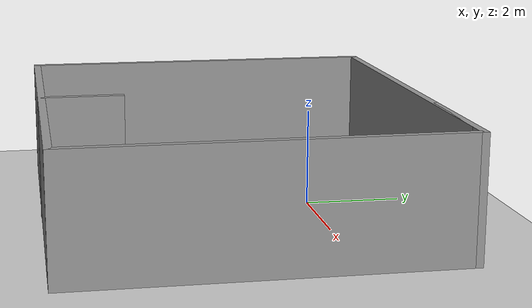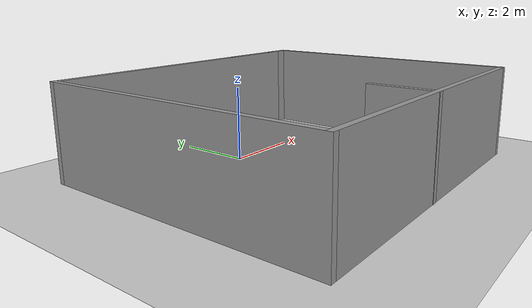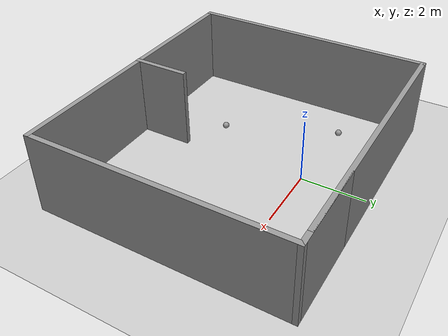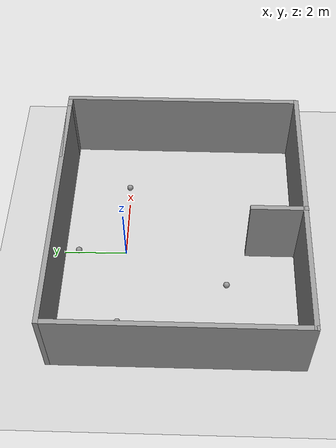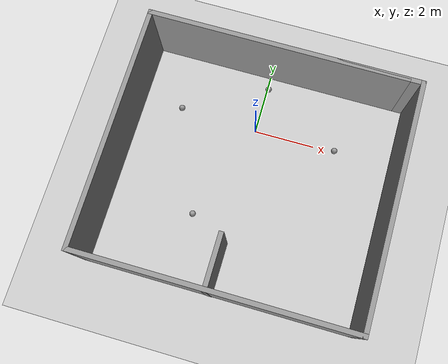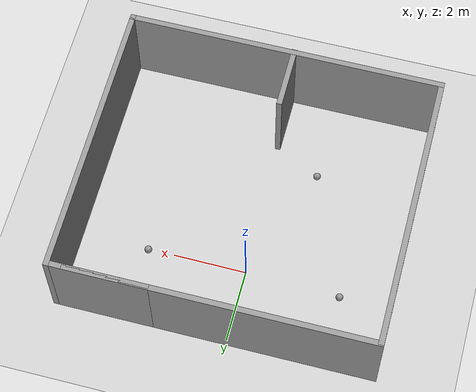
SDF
<sdf version="1.6">
 <world name="default">
  <light name="sun" type="directional">
   <pose>0 0 10 0 -0 0</pose>
   <diffuse>0.8 0.8 0.8 1</diffuse>
   <specular>0.2 0.2 0.2 1</specular>
   <attenuation>
    <range>1000</range>
    <constant>0.9</constant>
    <linear>0.01</linear>
    <quadratic>0.001</quadratic>
   </attenuation>
   <direction>-0.5 0.1 -0.9</direction>
  </light>
  <model name="ground_plane">
   <static>1</static>
   <link name="link">
    <collision name="collision">
     <geometry><plane><normal>0 0 1</normal><size>100 100</size></plane></geometry>
     <surface><friction><ode><mu>100</mu><mu2>50</mu2></ode></friction></surface>
    </collision>
    <visual name="visual">
     <cast_shadows>0</cast_shadows>
     <geometry><plane><normal>0 0 1</normal><size>100 100</size></plane></geometry>
     <material>
      <script><uri>file://media/materials/scripts/gazebo.material</uri><name>Gazebo/Grey</name></script>
     </material>
    </visual>
   </link>
  </model>
  <gravity>0 0 -9.8</gravity>
  <magnetic_field>6e-06 2.3e-05 -4.2e-05</magnetic_field>
  <atmosphere type="adiabatic"/>
  <physics name="default_physics" default="0" type="ode">
   <max_step_size>0.001</max_step_size>
   <real_time_factor>1</real_time_factor>
   <real_time_update_rate>1000</real_time_update_rate>
  </physics>
  <scene><ambient>0.4 0.4 0.4 1</ambient><background>0.7 0.7 0.7 1</background><shadows>1</shadows></scene>
  <spherical_coordinates>
   <surface_model>EARTH_WGS84</surface_model>
   <latitude_deg>0</latitude_deg>
   <longitude_deg>0</longitude_deg>
   <elevation>0</elevation>
   <heading_deg>0</heading_deg>
  </spherical_coordinates>
  <model name="proj2_world">
   <pose>0.335099 -1.74733 0 0 -0 0</pose>
   <link name="Wall_10">
    <collision name="Wall_10_Collision">
     <geometry><box><size>7.75 0.15 2.5</size></box></geometry>
     <pose>0 0 1.25 0 -0 0</pose>
    </collision>
    <visual name="Wall_10_Visual">
     <pose>0 0 1.25 0 -0 0</pose>
     <geometry><box><size>7.75 0.15 2.5</size></box></geometry>
     <material>
      <script><uri>file://media/materials/scripts/gazebo.material</uri><name>Gazebo/Grey</name></script>
      <ambient>1 1 1 1</ambient>
     </material>
     <meta><layer>0</layer></meta>
    </visual>
    <pose>-4.3 0.005179 0 0 0 -1.5708</pose>
   </link>
   <link name="Wall_11">
    <collision name="Wall_11_Collision">
     <geometry><box><size>8.75 0.15 2.5</size></box></geometry>
     <pose>0 0 1.25 0 -0 0</pose>
    </collision>
    <visual name="Wall_11_Visual">
     <pose>0 0 1.25 0 -0 0</pose>
     <geometry><box><size>8.75 0.15 2.5</size></box></geometry>
     <material>
      <script><uri>file://media/materials/scripts/gazebo.material</uri><name>Gazebo/Grey</name></script>
      <ambient>1 1 1 1</ambient>
     </material>
     <meta><layer>0</layer></meta>
    </visual>
    <pose>0 -3.79482 0 0 -0 0</pose>
   </link>
   <link name="Wall_12">
    <collision name="Wall_12_Collision">
     <geometry><box><size>7.75 0.15 2.5</size></box></geometry>
     <pose>0 0 1.25 0 -0 0</pose>
    </collision>
    <visual name="Wall_12_Visual">
     <pose>0 0 1.25 0 -0 0</pose>
     <geometry><box><size>7.75 0.15 2.5</size></box></geometry>
     <material>
      <script><uri>file://media/materials/scripts/gazebo.material</uri><name>Gazebo/Grey</name></script>
      <ambient>1 1 1 1</ambient>
     </material>
     <meta><layer>0</layer></meta>
    </visual>
    <pose>4.3 0.005179 0 0 -0 1.5708</pose>
   </link>
   <link name="Wall_13">
    <collision name="Wall_13_Collision">
     <geometry><box><size>2.75 0.15 2.5</size></box></geometry>
     <pose>0 0 1.25 0 -0 0</pose>
    </collision>
    <visual name="Wall_13_Visual">
     <pose>0 0 1.25 0 -0 0</pose>
     <geometry><box><size>2.75 0.15 2.5</size></box></geometry>
     <material>
      <script><uri>file://media/materials/scripts/gazebo.material</uri><name>Gazebo/Grey</name></script>
      <ambient>1 1 1 1</ambient>
     </material>
     <meta><layer>0</layer></meta>
    </visual>
    <pose>3 3.80518 0 0 -0 3.14159</pose>
   </link>
   <link name="Wall_17">
    <collision name="Wall_17_Collision">
     <geometry><box><size>1.75 0.15 2.5</size></box></geometry>
     <pose>0 0 1.25 0 -0 0</pose>
    </collision>
    <visual name="Wall_17_Visual">
     <pose>0 0 1.25 0 -0 0</pose>
     <geometry><box><size>1.75 0.15 2.5</size></box></geometry>
     <material>
      <script><uri>file://media/materials/scripts/gazebo.material</uri><name>Gazebo/Grey</name></script>
      <ambient>1 1 1 1</ambient>
     </material>
     <meta><layer>0</layer></meta>
    </visual>
    <pose>-0.239404 -3.00518 0 0 -0 1.5708</pose>
   </link>
   <link name="Wall_3">
    <collision name="Wall_3_Collision">
     <geometry><box><size>8.28498 0.15 2.5</size></box></geometry>
     <pose>0 0 1.25 0 -0 0</pose>
    </collision>
    <visual name="Wall_3_Visual">
     <pose>0 0 1.25 0 -0 0</pose>
     <geometry><box><size>8.28498 0.15 2.5</size></box></geometry>
     <material>
      <script><uri>file://media/materials/scripts/gazebo.material</uri><name>Gazebo/Grey</name></script>
      <ambient>1 1 1 1</ambient>
     </material>
     <meta><layer>0</layer></meta>
    </visual>
    <pose>-0.23251 3.80518 0 0 -0 3.14159</pose>
   </link>
   <static>1</static>
  </model>
  <model name="my_ball">
   <link name="link_0">
    <inertial>
     <mass>1</mass>
     <inertia><ixx>0.1</ixx><ixy>0</ixy><ixz>0</ixz><iyy>0.1</iyy><iyz>0</iyz><izz>0.1</izz></inertia>
    </inertial>
    <visual name="visual">
     <geometry><sphere><radius>0.1</radius></sphere></geometry>
     <material>
      <lighting>1</lighting>
      <script><uri>file://media/materials/scripts/gazebo.material</uri><name>Gazebo/Grey</name></script>
      <shader type="pixel"><normal_map>__default__</normal_map></shader>
      <ambient>1 1 1 1</ambient>
      <diffuse>1 1 1 1</diffuse>
      <specular>1 1 1 1</specular>
      <emissive>1 1 1 1</emissive>
     </material>
    </visual>
    <collision name="collision">
     <geometry><sphere><radius>0.1</radius></sphere></geometry>
     <surface>
      <friction>
       <ode><mu>1</mu><mu2>1</mu2><fdir1>0 0 0</fdir1><slip1>0</slip1><slip2>0</slip2></ode>
       <torsional>
        <coefficient>1</coefficient>
        <patch_radius>0</patch_radius>
        <surface_radius>0</surface_radius>
        <use_patch_radius>1</use_patch_radius>
        <ode><slip>0</slip></ode>
       </torsional>
      </friction>
      <bounce><restitution_coefficient>0</restitution_coefficient><threshold>1e+06</threshold></bounce>
      <contact>
       <collide_without_contact>0</collide_without_contact>
       <collide_without_contact_bitmask>1</collide_without_contact_bitmask>
       <collide_bitmask>1</collide_bitmask>
       <ode>
        <soft_cfm>0</soft_cfm>
        <soft_erp>0.2</soft_erp>
        <kp>1e+13</kp>
        <kd>1</kd>
        <max_vel>0.01</max_vel>
        <min_depth>0</min_depth>
       </ode>
       <bullet>
        <split_impulse>1</split_impulse>
        <split_impulse_penetration_threshold>-0.01</split_impulse_penetration_threshold>
        <soft_cfm>0</soft_cfm>
        <soft_erp>0.2</soft_erp>
        <kp>1e+13</kp>
        <kd>1</kd>
       </bullet>
      </contact>
     </surface>
    </collision>
   </link>
   <static>0</static>
   <pose>2.70858 0.042543 0.1 0 -0 0</pose>
  </model>
  <model name="my_ball_0">
   <link name="link_0">
    <inertial>
     <mass>1</mass>
     <inertia><ixx>0.1</ixx><ixy>0</ixy><ixz>0</ixz><iyy>0.1</iyy><iyz>0</iyz><izz>0.1</izz></inertia>
    </inertial>
    <visual name="visual">
     <geometry><sphere><radius>0.1</radius></sphere></geometry>
     <material>
      <lighting>1</lighting>
      <script><uri>file://media/materials/scripts/gazebo.material</uri><name>Gazebo/Grey</name></script>
      <shader type="pixel"><normal_map>__default__</normal_map></shader>
      <ambient>1 1 1 1</ambient>
      <diffuse>1 1 1 1</diffuse>
      <specular>1 1 1 1</specular>
      <emissive>1 1 1 1</emissive>
     </material>
    </visual>
    <collision name="collision">
     <geometry><sphere><radius>0.1</radius></sphere></geometry>
     <surface>
      <friction>
       <ode><mu>1</mu><mu2>1</mu2><fdir1>0 0 0</fdir1><slip1>0</slip1><slip2>0</slip2></ode>
       <torsional>
        <coefficient>1</coefficient>
        <patch_radius>0</patch_radius>
        <surface_radius>0</surface_radius>
        <use_patch_radius>1</use_patch_radius>
        <ode><slip>0</slip></ode>
       </torsional>
      </friction>
      <bounce><restitution_coefficient>0</restitution_coefficient><threshold>1e+06</threshold></bounce>
      <contact>
       <collide_without_contact>0</collide_without_contact>
       <collide_without_contact_bitmask>1</collide_without_contact_bitmask>
       <collide_bitmask>1</collide_bitmask>
       <ode>
        <soft_cfm>0</soft_cfm>
        <soft_erp>0.2</soft_erp>
        <kp>1e+13</kp>
        <kd>1</kd>
        <max_vel>0.01</max_vel>
        <min_depth>0</min_depth>
       </ode>
       <bullet>
        <split_impulse>1</split_impulse>
        <split_impulse_penetration_threshold>-0.01</split_impulse_penetration_threshold>
        <soft_cfm>0</soft_cfm>
        <soft_erp>0.2</soft_erp>
        <kp>1e+13</kp>
        <kd>1</kd>
       </bullet>
      </contact>
     </surface>
    </collision>
   </link>
   <static>0</static>
   <pose>-1.18497 -3.26357 0.1 0 -0 0</pose>
  </model>
  <model name="my_ball_1">
   <link name="link_0">
    <inertial>
     <mass>1</mass>
     <inertia><ixx>0.1</ixx><ixy>0</ixy><ixz>0</ixz><iyy>0.1</iyy><iyz>0</iyz><izz>0.1</izz></inertia>
    </inertial>
    <visual name="visual">
     <geometry><sphere><radius>0.1</radius></sphere></geometry>
     <material>
      <lighting>1</lighting>
      <script><uri>file://media/materials/scripts/gazebo.material</uri><name>Gazebo/Grey</name></script>
      <shader type="pixel"><normal_map>__default__</normal_map></shader>
      <ambient>1 1 1 1</ambient>
      <diffuse>1 1 1 1</diffuse>
      <specular>1 1 1 1</specular>
      <emissive>1 1 1 1</emissive>
     </material>
    </visual>
    <collision name="collision">
     <geometry><sphere><radius>0.1</radius></sphere></geometry>
     <surface>
      <friction>
       <ode><mu>1</mu><mu2>1</mu2><fdir1>0 0 0</fdir1><slip1>0</slip1><slip2>0</slip2></ode>
       <torsional>
        <coefficient>1</coefficient>
        <patch_radius>0</patch_radius>
        <surface_radius>0</surface_radius>
        <use_patch_radius>1</use_patch_radius>
        <ode><slip>0</slip></ode>
       </torsional>
      </friction>
      <bounce><restitution_coefficient>0</restitution_coefficient><threshold>1e+06</threshold></bounce>
      <contact>
       <collide_without_contact>0</collide_without_contact>
       <collide_without_contact_bitmask>1</collide_without_contact_bitmask>
       <collide_bitmask>1</collide_bitmask>
       <ode>
        <soft_cfm>0</soft_cfm>
        <soft_erp>0.2</soft_erp>
        <kp>1e+13</kp>
        <kd>1</kd>
        <max_vel>0.01</max_vel>
        <min_depth>0</min_depth>
       </ode>
       <bullet>
        <split_impulse>1</split_impulse>
        <split_impulse_penetration_threshold>-0.01</split_impulse_penetration_threshold>
        <soft_cfm>0</soft_cfm>
        <soft_erp>0.2</soft_erp>
        <kp>1e+13</kp>
        <kd>1</kd>
       </bullet>
      </contact>
     </surface>
    </collision>
   </link>
   <static>0</static>
   <pose>-2.59795 0.107222 0.1 0 -0 0</pose>
  </model>
  <model name="my_ball_2">
   <link name="link_0">
    <inertial>
     <mass>1</mass>
     <inertia><ixx>0.1</ixx><ixy>0</ixy><ixz>0</ixz><iyy>0.1</iyy><iyz>0</iyz><izz>0.1</izz></inertia>
    </inertial>
    <visual name="visual">
     <geometry><sphere><radius>0.1</radius></sphere></geometry>
     <material>
      <lighting>1</lighting>
      <script><uri>file://media/materials/scripts/gazebo.material</uri><name>Gazebo/Grey</name></script>
      <shader type="pixel"><normal_map>__default__</normal_map></shader>
      <ambient>1 1 1 1</ambient>
      <diffuse>1 1 1 1</diffuse>
      <specular>1 1 1 1</specular>
      <emissive>1 1 1 1</emissive>
     </material>
    </visual>
    <collision name="collision">
     <geometry><sphere><radius>0.1</radius></sphere></geometry>
     <surface>
      <friction>
       <ode><mu>1</mu><mu2>1</mu2><fdir1>0 0 0</fdir1><slip1>0</slip1><slip2>0</slip2></ode>
       <torsional>
        <coefficient>1</coefficient>
        <patch_radius>0</patch_radius>
        <surface_radius>0</surface_radius>
        <use_patch_radius>1</use_patch_radius>
        <ode><slip>0</slip></ode>
       </torsional>
      </friction>
      <bounce><restitution_coefficient>0</restitution_coefficient><threshold>1e+06</threshold></bounce>
      <contact>
       <collide_without_contact>0</collide_without_contact>
       <collide_without_contact_bitmask>1</collide_without_contact_bitmask>
       <collide_bitmask>1</collide_bitmask>
       <ode>
        <soft_cfm>0</soft_cfm>
        <soft_erp>0.2</soft_erp>
        <kp>1e+13</kp>
        <kd>1</kd>
        <max_vel>0.01</max_vel>
        <min_depth>0</min_depth>
       </ode>
       <bullet>
        <split_impulse>1</split_impulse>
        <split_impulse_penetration_threshold>-0.01</split_impulse_penetration_threshold>
        <soft_cfm>0</soft_cfm>
        <soft_erp>0.2</soft_erp>
        <kp>1e+13</kp>
        <kd>1</kd>
       </bullet>
      </contact>
     </surface>
    </collision>
   </link>
   <static>0</static>
   <pose>0.033809 1.54858 0.1 0 -0 0</pose>
  </model>
 </world>
</sdf>
